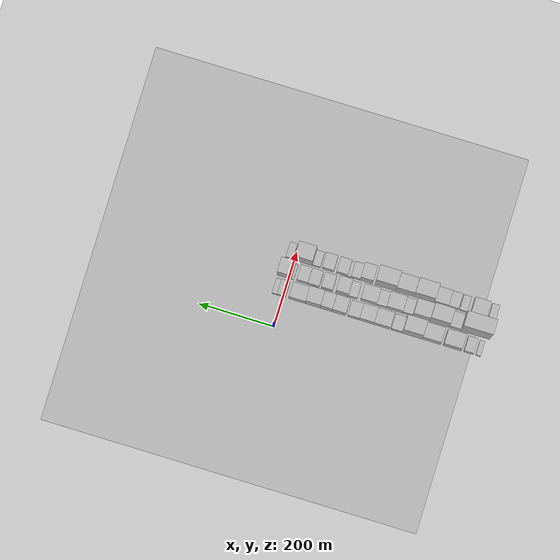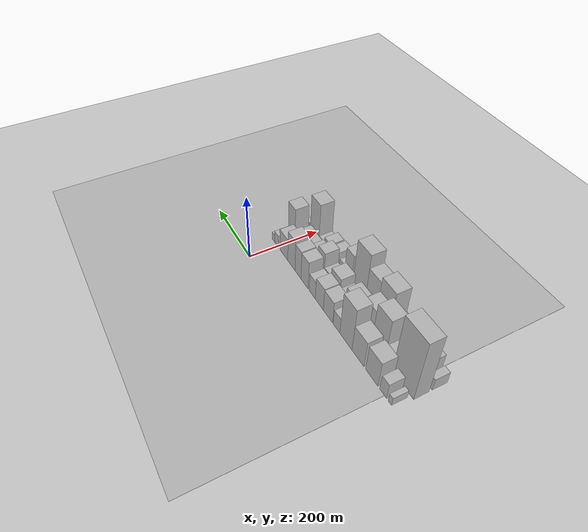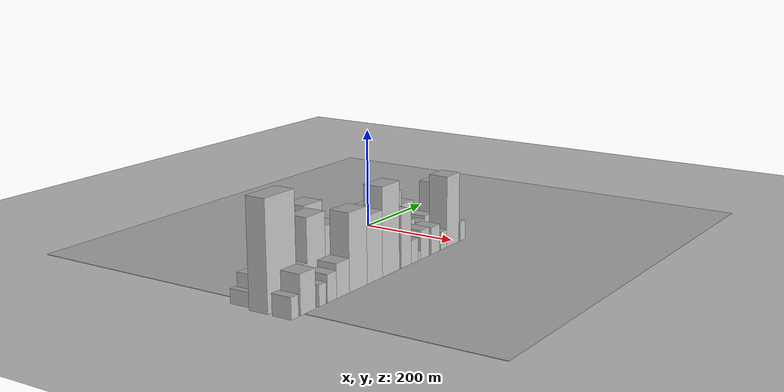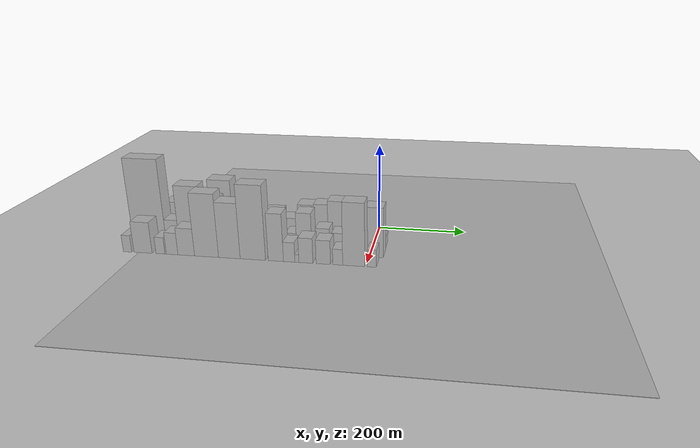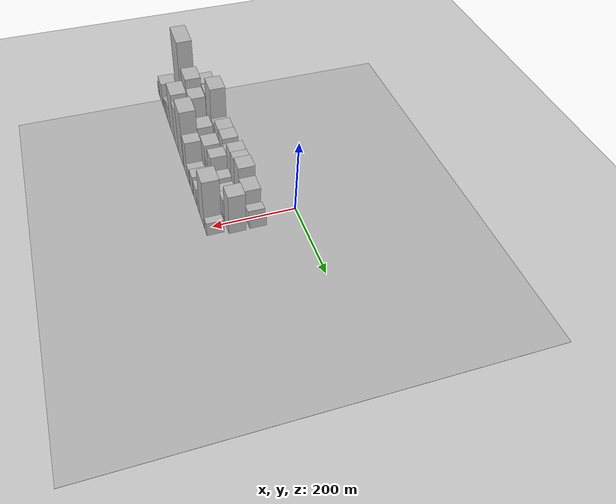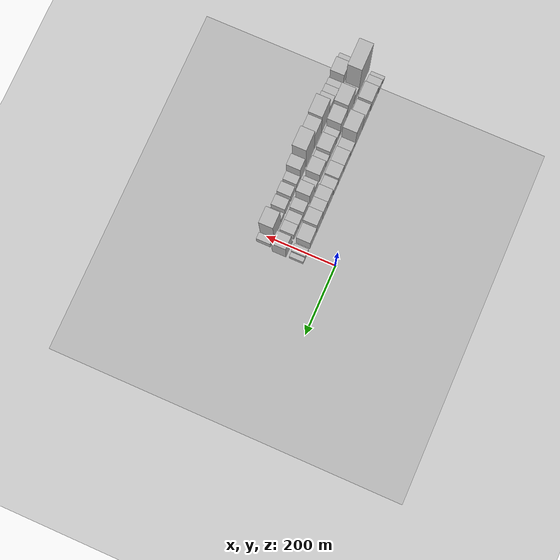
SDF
<sdf version="1.6">
 <world name="default">
  <include><name>ground_plane_1</name><uri>model://HANNAS_ground_plane</uri></include>
  <include>
   <name>ground_plane_2</name>
   <uri>model://HANNAS_ground_plane</uri>
   <pose>100 0 0  0 0 0</pose>
  </include>
  <model name="building_1">
   <static>1</static>
   <pose>100.0000 -519.6866 0 0.000000 0.000000 0.000000</pose>
   <link name="link">
    <pose>0 0 13.50 0 0 0</pose>
    <collision name="collision"><geometry><box><size>40.0000 12.6267 27.0000</size></box></geometry></collision>
    <visual name="visual">
     <cast_shadows>0</cast_shadows>
     <geometry><box><size>40.0000 12.6267 27.0000</size></box></geometry>
     <material>
      <script>
       <uri>model://HANNAS_wall/materials/scripts</uri>
       <uri>model://HANNAS_wall/materials/textures</uri>
       <name>vrc/HANNAS_wall</name>
      </script>
     </material>
    </visual>
   </link>
  </model>
  <model name="building_2">
   <static>1</static>
   <pose>100.0000 -494.6154 0 0.000000 0.000000 0.000000</pose>
   <link name="link">
    <pose>0 0 25.50 0 0 0</pose>
    <collision name="collision"><geometry><box><size>40.0000 25.5158 51.0000</size></box></geometry></collision>
    <visual name="visual">
     <cast_shadows>0</cast_shadows>
     <geometry><box><size>40.0000 25.5158 51.0000</size></box></geometry>
     <material>
      <script>
       <uri>model://HANNAS_wall/materials/scripts</uri>
       <uri>model://HANNAS_wall/materials/textures</uri>
       <name>vrc/HANNAS_wall</name>
      </script>
     </material>
    </visual>
   </link>
  </model>
  <model name="building_3">
   <static>1</static>
   <pose>100.0000 -450.8722 0 0.000000 0.000000 0.000000</pose>
   <link name="link">
    <pose>0 0 42.00 0 0 0</pose>
    <collision name="collision"><geometry><box><size>40.0000 47.9705 84.0000</size></box></geometry></collision>
    <visual name="visual">
     <cast_shadows>0</cast_shadows>
     <geometry><box><size>40.0000 47.9705 84.0000</size></box></geometry>
     <material>
      <script>
       <uri>model://HANNAS_wall/materials/scripts</uri>
       <uri>model://HANNAS_wall/materials/textures</uri>
       <name>vrc/HANNAS_wall</name>
      </script>
     </material>
    </visual>
   </link>
  </model>
  <model name="building_4">
   <static>1</static>
   <pose>100.0000 -395.0757 0 0.000000 0.000000 0.000000</pose>
   <link name="link">
    <pose>0 0 43.50 0 0 0</pose>
    <collision name="collision"><geometry><box><size>40.0000 49.6225 87.0000</size></box></geometry></collision>
    <visual name="visual">
     <cast_shadows>0</cast_shadows>
     <geometry><box><size>40.0000 49.6225 87.0000</size></box></geometry>
     <material>
      <script>
       <uri>model://HANNAS_wall/materials/scripts</uri>
       <uri>model://HANNAS_wall/materials/textures</uri>
       <name>vrc/HANNAS_wall</name>
      </script>
     </material>
    </visual>
   </link>
  </model>
  <model name="building_5">
   <static>1</static>
   <pose>100.0000 -343.9417 0 0.000000 0.000000 0.000000</pose>
   <link name="link">
    <pose>0 0 70.50 0 0 0</pose>
    <collision name="collision"><geometry><box><size>40.0000 52.6456 141.0000</size></box></geometry></collision>
    <visual name="visual">
     <cast_shadows>0</cast_shadows>
     <geometry><box><size>40.0000 52.6456 141.0000</size></box></geometry>
     <material>
      <script>
       <uri>model://HANNAS_wall/materials/scripts</uri>
       <uri>model://HANNAS_wall/materials/textures</uri>
       <name>vrc/HANNAS_wall</name>
      </script>
     </material>
    </visual>
   </link>
  </model>
  <model name="building_6">
   <static>1</static>
   <pose>100.0000 -302.6311 0 0.000000 0.000000 0.000000</pose>
   <link name="link">
    <pose>0 0 25.50 0 0 0</pose>
    <collision name="collision"><geometry><box><size>40.0000 29.9756 51.0000</size></box></geometry></collision>
    <visual name="visual">
     <cast_shadows>0</cast_shadows>
     <geometry><box><size>40.0000 29.9756 51.0000</size></box></geometry>
     <material>
      <script>
       <uri>model://HANNAS_wall/materials/scripts</uri>
       <uri>model://HANNAS_wall/materials/textures</uri>
       <name>vrc/HANNAS_wall</name>
      </script>
     </material>
    </visual>
   </link>
  </model>
  <model name="building_7">
   <static>1</static>
   <pose>100.0000 -263.2616 0 0.000000 0.000000 0.000000</pose>
   <link name="link">
    <pose>0 0 36.00 0 0 0</pose>
    <collision name="collision"><geometry><box><size>40.0000 42.7635 72.0000</size></box></geometry></collision>
    <visual name="visual">
     <cast_shadows>0</cast_shadows>
     <geometry><box><size>40.0000 42.7635 72.0000</size></box></geometry>
     <material>
      <script>
       <uri>model://HANNAS_wall/materials/scripts</uri>
       <uri>model://HANNAS_wall/materials/textures</uri>
       <name>vrc/HANNAS_wall</name>
      </script>
     </material>
    </visual>
   </link>
  </model>
  <model name="building_8">
   <static>1</static>
   <pose>100.0000 -222.4727 0 0.000000 0.000000 0.000000</pose>
   <link name="link">
    <pose>0 0 37.50 0 0 0</pose>
    <collision name="collision"><geometry><box><size>40.0000 38.8142 75.0000</size></box></geometry></collision>
    <visual name="visual">
     <cast_shadows>0</cast_shadows>
     <geometry><box><size>40.0000 38.8142 75.0000</size></box></geometry>
     <material>
      <script>
       <uri>model://HANNAS_wall/materials/scripts</uri>
       <uri>model://HANNAS_wall/materials/textures</uri>
       <name>vrc/HANNAS_wall</name>
      </script>
     </material>
    </visual>
   </link>
  </model>
  <model name="building_9">
   <static>1</static>
   <pose>100.0000 -187.4194 0 0.000000 0.000000 0.000000</pose>
   <link name="link">
    <pose>0 0 30.00 0 0 0</pose>
    <collision name="collision"><geometry><box><size>40.0000 31.2924 60.0000</size></box></geometry></collision>
    <visual name="visual">
     <cast_shadows>0</cast_shadows>
     <geometry><box><size>40.0000 31.2924 60.0000</size></box></geometry>
     <material>
      <script>
       <uri>model://HANNAS_wall/materials/scripts</uri>
       <uri>model://HANNAS_wall/materials/textures</uri>
       <name>vrc/HANNAS_wall</name>
      </script>
     </material>
    </visual>
   </link>
  </model>
  <model name="building_10">
   <static>1</static>
   <pose>100.0000 -148.5886 0 0.000000 0.000000 0.000000</pose>
   <link name="link">
    <pose>0 0 46.50 0 0 0</pose>
    <collision name="collision"><geometry><box><size>40.0000 36.3691 93.0000</size></box></geometry></collision>
    <visual name="visual">
     <cast_shadows>0</cast_shadows>
     <geometry><box><size>40.0000 36.3691 93.0000</size></box></geometry>
     <material>
      <script>
       <uri>model://HANNAS_wall/materials/scripts</uri>
       <uri>model://HANNAS_wall/materials/textures</uri>
       <name>vrc/HANNAS_wall</name>
      </script>
     </material>
    </visual>
   </link>
  </model>
  <model name="building_11">
   <static>1</static>
   <pose>100.0000 -114.7853 0 0.000000 0.000000 0.000000</pose>
   <link name="link">
    <pose>0 0 48.00 0 0 0</pose>
    <collision name="collision"><geometry><box><size>40.0000 31.2376 96.0000</size></box></geometry></collision>
    <visual name="visual">
     <cast_shadows>0</cast_shadows>
     <geometry><box><size>40.0000 31.2376 96.0000</size></box></geometry>
     <material>
      <script>
       <uri>model://HANNAS_wall/materials/scripts</uri>
       <uri>model://HANNAS_wall/materials/textures</uri>
       <name>vrc/HANNAS_wall</name>
      </script>
     </material>
    </visual>
   </link>
  </model>
  <model name="building_12">
   <static>1</static>
   <pose>100.0000 -79.3528 0 0.000000 0.000000 0.000000</pose>
   <link name="link">
    <pose>0 0 52.50 0 0 0</pose>
    <collision name="collision"><geometry><box><size>40.0000 39.6273 105.0000</size></box></geometry></collision>
    <visual name="visual">
     <cast_shadows>0</cast_shadows>
     <geometry><box><size>40.0000 39.6273 105.0000</size></box></geometry>
     <material>
      <script>
       <uri>model://HANNAS_wall/materials/scripts</uri>
       <uri>model://HANNAS_wall/materials/textures</uri>
       <name>vrc/HANNAS_wall</name>
      </script>
     </material>
    </visual>
   </link>
  </model>
  <model name="building_13">
   <static>1</static>
   <pose>100.0000 -37.3916 0 0.000000 0.000000 0.000000</pose>
   <link name="link">
    <pose>0 0 37.50 0 0 0</pose>
    <collision name="collision"><geometry><box><size>40.0000 44.2951 75.0000</size></box></geometry></collision>
    <visual name="visual">
     <cast_shadows>0</cast_shadows>
     <geometry><box><size>40.0000 44.2951 75.0000</size></box></geometry>
     <material>
      <script>
       <uri>model://HANNAS_wall/materials/scripts</uri>
       <uri>model://HANNAS_wall/materials/textures</uri>
       <name>vrc/HANNAS_wall</name>
      </script>
     </material>
    </visual>
   </link>
  </model>
  <model name="building_14">
   <static>1</static>
   <pose>100.0000 5.1237 0 0.000000 0.000000 0.000000</pose>
   <link name="link">
    <pose>0 0 21.00 0 0 0</pose>
    <collision name="collision"><geometry><box><size>40.0000 22.7354 42.0000</size></box></geometry></collision>
    <visual name="visual">
     <cast_shadows>0</cast_shadows>
     <geometry><box><size>40.0000 22.7354 42.0000</size></box></geometry>
     <material>
      <script>
       <uri>model://HANNAS_wall/materials/scripts</uri>
       <uri>model://HANNAS_wall/materials/textures</uri>
       <name>vrc/HANNAS_wall</name>
      </script>
     </material>
    </visual>
   </link>
  </model>
  <model name="building_15">
   <static>1</static>
   <pose>100.0000 23.2030 0 0.000000 0.000000 0.000000</pose>
   <link name="link">
    <pose>0 0 13.50 0 0 0</pose>
    <collision name="collision"><geometry><box><size>40.0000 13.4233 27.0000</size></box></geometry></collision>
    <visual name="visual">
     <cast_shadows>0</cast_shadows>
     <geometry><box><size>40.0000 13.4233 27.0000</size></box></geometry>
     <material>
      <script>
       <uri>model://HANNAS_wall/materials/scripts</uri>
       <uri>model://HANNAS_wall/materials/textures</uri>
       <name>vrc/HANNAS_wall</name>
      </script>
     </material>
    </visual>
   </link>
  </model>
  <model name="building_31">
   <static>1</static>
   <pose>149.0000 -497.0887 0 0.000000 0.000000 0.000000</pose>
   <link name="link">
    <pose>0 0 99.00 0 0 0</pose>
    <collision name="collision"><geometry><box><size>40.0000 77.8226 198.0000</size></box></geometry></collision>
    <visual name="visual">
     <cast_shadows>0</cast_shadows>
     <geometry><box><size>40.0000 77.8226 198.0000</size></box></geometry>
     <material>
      <script>
       <uri>model://HANNAS_wall/materials/scripts</uri>
       <uri>model://HANNAS_wall/materials/textures</uri>
       <name>vrc/HANNAS_wall</name>
      </script>
     </material>
    </visual>
   </link>
  </model>
  <model name="building_32">
   <static>1</static>
   <pose>149.0000 -442.9070 0 0.000000 0.000000 0.000000</pose>
   <link name="link">
    <pose>0 0 30.00 0 0 0</pose>
    <collision name="collision"><geometry><box><size>40.0000 30.5407 60.0000</size></box></geometry></collision>
    <visual name="visual">
     <cast_shadows>0</cast_shadows>
     <geometry><box><size>40.0000 30.5407 60.0000</size></box></geometry>
     <material>
      <script>
       <uri>model://HANNAS_wall/materials/scripts</uri>
       <uri>model://HANNAS_wall/materials/textures</uri>
       <name>vrc/HANNAS_wall</name>
      </script>
     </material>
    </visual>
   </link>
  </model>
  <model name="building_33">
   <static>1</static>
   <pose>149.0000 -401.4704 0 0.000000 0.000000 0.000000</pose>
   <link name="link">
    <pose>0 0 70.50 0 0 0</pose>
    <collision name="collision"><geometry><box><size>40.0000 52.3324 141.0000</size></box></geometry></collision>
    <visual name="visual">
     <cast_shadows>0</cast_shadows>
     <geometry><box><size>40.0000 52.3324 141.0000</size></box></geometry>
     <material>
      <script>
       <uri>model://HANNAS_wall/materials/scripts</uri>
       <uri>model://HANNAS_wall/materials/textures</uri>
       <name>vrc/HANNAS_wall</name>
      </script>
     </material>
    </visual>
   </link>
  </model>
  <model name="building_34">
   <static>1</static>
   <pose>149.0000 -352.8237 0 0.000000 0.000000 0.000000</pose>
   <link name="link">
    <pose>0 0 57.00 0 0 0</pose>
    <collision name="collision"><geometry><box><size>40.0000 44.9612 114.0000</size></box></geometry></collision>
    <visual name="visual">
     <cast_shadows>0</cast_shadows>
     <geometry><box><size>40.0000 44.9612 114.0000</size></box></geometry>
     <material>
      <script>
       <uri>model://HANNAS_wall/materials/scripts</uri>
       <uri>model://HANNAS_wall/materials/textures</uri>
       <name>vrc/HANNAS_wall</name>
      </script>
     </material>
    </visual>
   </link>
  </model>
  <model name="building_35">
   <static>1</static>
   <pose>149.0000 -317.1891 0 0.000000 0.000000 0.000000</pose>
   <link name="link">
    <pose>0 0 25.50 0 0 0</pose>
    <collision name="collision"><geometry><box><size>40.0000 26.3079 51.0000</size></box></geometry></collision>
    <visual name="visual">
     <cast_shadows>0</cast_shadows>
     <geometry><box><size>40.0000 26.3079 51.0000</size></box></geometry>
     <material>
      <script>
       <uri>model://HANNAS_wall/materials/scripts</uri>
       <uri>model://HANNAS_wall/materials/textures</uri>
       <name>vrc/HANNAS_wall</name>
      </script>
     </material>
    </visual>
   </link>
  </model>
  <model name="building_36">
   <static>1</static>
   <pose>149.0000 -282.0252 0 0.000000 0.000000 0.000000</pose>
   <link name="link">
    <pose>0 0 37.50 0 0 0</pose>
    <collision name="collision"><geometry><box><size>40.0000 44.0200 75.0000</size></box></geometry></collision>
    <visual name="visual">
     <cast_shadows>0</cast_shadows>
     <geometry><box><size>40.0000 44.0200 75.0000</size></box></geometry>
     <material>
      <script>
       <uri>model://HANNAS_wall/materials/scripts</uri>
       <uri>model://HANNAS_wall/materials/textures</uri>
       <name>vrc/HANNAS_wall</name>
      </script>
     </material>
    </visual>
   </link>
  </model>
  <model name="building_37">
   <static>1</static>
   <pose>149.0000 -246.9999 0 0.000000 0.000000 0.000000</pose>
   <link name="link">
    <pose>0 0 22.50 0 0 0</pose>
    <collision name="collision"><geometry><box><size>40.0000 26.0306 45.0000</size></box></geometry></collision>
    <visual name="visual">
     <cast_shadows>0</cast_shadows>
     <geometry><box><size>40.0000 26.0306 45.0000</size></box></geometry>
     <material>
      <script>
       <uri>model://HANNAS_wall/materials/scripts</uri>
       <uri>model://HANNAS_wall/materials/textures</uri>
       <name>vrc/HANNAS_wall</name>
      </script>
     </material>
    </visual>
   </link>
  </model>
  <model name="building_38">
   <static>1</static>
   <pose>149.0000 -212.6889 0 0.000000 0.000000 0.000000</pose>
   <link name="link">
    <pose>0 0 37.50 0 0 0</pose>
    <collision name="collision"><geometry><box><size>40.0000 42.5914 75.0000</size></box></geometry></collision>
    <visual name="visual">
     <cast_shadows>0</cast_shadows>
     <geometry><box><size>40.0000 42.5914 75.0000</size></box></geometry>
     <material>
      <script>
       <uri>model://HANNAS_wall/materials/scripts</uri>
       <uri>model://HANNAS_wall/materials/textures</uri>
       <name>vrc/HANNAS_wall</name>
      </script>
     </material>
    </visual>
   </link>
  </model>
  <model name="building_39">
   <static>1</static>
   <pose>149.0000 -170.6452 0 0.000000 0.000000 0.000000</pose>
   <link name="link">
    <pose>0 0 22.50 0 0 0</pose>
    <collision name="collision"><geometry><box><size>40.0000 23.4961 45.0000</size></box></geometry></collision>
    <visual name="visual">
     <cast_shadows>0</cast_shadows>
     <geometry><box><size>40.0000 23.4961 45.0000</size></box></geometry>
     <material>
      <script>
       <uri>model://HANNAS_wall/materials/scripts</uri>
       <uri>model://HANNAS_wall/materials/textures</uri>
       <name>vrc/HANNAS_wall</name>
      </script>
     </material>
    </visual>
   </link>
  </model>
  <model name="building_40">
   <static>1</static>
   <pose>149.0000 -142.1918 0 0.000000 0.000000 0.000000</pose>
   <link name="link">
    <pose>0 0 46.50 0 0 0</pose>
    <collision name="collision"><geometry><box><size>40.0000 33.4107 93.0000</size></box></geometry></collision>
    <visual name="visual">
     <cast_shadows>0</cast_shadows>
     <geometry><box><size>40.0000 33.4107 93.0000</size></box></geometry>
     <material>
      <script>
       <uri>model://HANNAS_wall/materials/scripts</uri>
       <uri>model://HANNAS_wall/materials/textures</uri>
       <name>vrc/HANNAS_wall</name>
      </script>
     </material>
    </visual>
   </link>
  </model>
  <model name="building_41">
   <static>1</static>
   <pose>149.0000 -101.2283 0 0.000000 0.000000 0.000000</pose>
   <link name="link">
    <pose>0 0 30.00 0 0 0</pose>
    <collision name="collision"><geometry><box><size>40.0000 30.5162 60.0000</size></box></geometry></collision>
    <visual name="visual">
     <cast_shadows>0</cast_shadows>
     <geometry><box><size>40.0000 30.5162 60.0000</size></box></geometry>
     <material>
      <script>
       <uri>model://HANNAS_wall/materials/scripts</uri>
       <uri>model://HANNAS_wall/materials/textures</uri>
       <name>vrc/HANNAS_wall</name>
      </script>
     </material>
    </visual>
   </link>
  </model>
  <model name="building_42">
   <static>1</static>
   <pose>149.0000 -65.9850 0 0.000000 0.000000 0.000000</pose>
   <link name="link">
    <pose>0 0 25.50 0 0 0</pose>
    <collision name="collision"><geometry><box><size>40.0000 29.9704 51.0000</size></box></geometry></collision>
    <visual name="visual">
     <cast_shadows>0</cast_shadows>
     <geometry><box><size>40.0000 29.9704 51.0000</size></box></geometry>
     <material>
      <script>
       <uri>model://HANNAS_wall/materials/scripts</uri>
       <uri>model://HANNAS_wall/materials/textures</uri>
       <name>vrc/HANNAS_wall</name>
      </script>
     </material>
    </visual>
   </link>
  </model>
  <model name="building_43">
   <static>1</static>
   <pose>149.0000 -36.1388 0 0.000000 0.000000 0.000000</pose>
   <link name="link">
    <pose>0 0 28.50 0 0 0</pose>
    <collision name="collision"><geometry><box><size>40.0000 29.7221 57.0000</size></box></geometry></collision>
    <visual name="visual">
     <cast_shadows>0</cast_shadows>
     <geometry><box><size>40.0000 29.7221 57.0000</size></box></geometry>
     <material>
      <script>
       <uri>model://HANNAS_wall/materials/scripts</uri>
       <uri>model://HANNAS_wall/materials/textures</uri>
       <name>vrc/HANNAS_wall</name>
      </script>
     </material>
    </visual>
   </link>
  </model>
  <model name="building_44">
   <static>1</static>
   <pose>149.0000 -10.1473 0 0.000000 0.000000 0.000000</pose>
   <link name="link">
    <pose>0 0 7.50 0 0 0</pose>
    <collision name="collision"><geometry><box><size>40.0000 6.2609 15.0000</size></box></geometry></collision>
    <visual name="visual">
     <cast_shadows>0</cast_shadows>
     <geometry><box><size>40.0000 6.2609 15.0000</size></box></geometry>
     <material>
      <script>
       <uri>model://HANNAS_wall/materials/scripts</uri>
       <uri>model://HANNAS_wall/materials/textures</uri>
       <name>vrc/HANNAS_wall</name>
      </script>
     </material>
    </visual>
   </link>
  </model>
  <model name="building_45">
   <static>1</static>
   <pose>149.0000 12.0057 0 0.000000 0.000000 0.000000</pose>
   <link name="link">
    <pose>0 0 57.00 0 0 0</pose>
    <collision name="collision"><geometry><box><size>40.0000 38.0451 114.0000</size></box></geometry></collision>
    <visual name="visual">
     <cast_shadows>0</cast_shadows>
     <geometry><box><size>40.0000 38.0451 114.0000</size></box></geometry>
     <material>
      <script>
       <uri>model://HANNAS_wall/materials/scripts</uri>
       <uri>model://HANNAS_wall/materials/textures</uri>
       <name>vrc/HANNAS_wall</name>
      </script>
     </material>
    </visual>
   </link>
  </model>
  <model name="building_61">
   <static>1</static>
   <pose>198.0000 -526.1822 0 0.000000 0.000000 0.000000</pose>
   <link name="link">
    <pose>0 0 19.50 0 0 0</pose>
    <collision name="collision"><geometry><box><size>40.0000 19.6356 39.0000</size></box></geometry></collision>
    <visual name="visual">
     <cast_shadows>0</cast_shadows>
     <geometry><box><size>40.0000 19.6356 39.0000</size></box></geometry>
     <material>
      <script>
       <uri>model://HANNAS_wall/materials/scripts</uri>
       <uri>model://HANNAS_wall/materials/textures</uri>
       <name>vrc/HANNAS_wall</name>
      </script>
     </material>
    </visual>
   </link>
  </model>
  <model name="building_62">
   <static>1</static>
   <pose>198.0000 -490.4910 0 0.000000 0.000000 0.000000</pose>
   <link name="link">
    <pose>0 0 36.00 0 0 0</pose>
    <collision name="collision"><geometry><box><size>40.0000 41.7467 72.0000</size></box></geometry></collision>
    <visual name="visual">
     <cast_shadows>0</cast_shadows>
     <geometry><box><size>40.0000 41.7467 72.0000</size></box></geometry>
     <material>
      <script>
       <uri>model://HANNAS_wall/materials/scripts</uri>
       <uri>model://HANNAS_wall/materials/textures</uri>
       <name>vrc/HANNAS_wall</name>
      </script>
     </material>
    </visual>
   </link>
  </model>
  <model name="building_63">
   <static>1</static>
   <pose>198.0000 -450.3606 0 0.000000 0.000000 0.000000</pose>
   <link name="link">
    <pose>0 0 19.50 0 0 0</pose>
    <collision name="collision"><geometry><box><size>40.0000 20.5141 39.0000</size></box></geometry></collision>
    <visual name="visual">
     <cast_shadows>0</cast_shadows>
     <geometry><box><size>40.0000 20.5141 39.0000</size></box></geometry>
     <material>
      <script>
       <uri>model://HANNAS_wall/materials/scripts</uri>
       <uri>model://HANNAS_wall/materials/textures</uri>
       <name>vrc/HANNAS_wall</name>
      </script>
     </material>
    </visual>
   </link>
  </model>
  <model name="building_64">
   <static>1</static>
   <pose>198.0000 -423.8604 0 0.000000 0.000000 0.000000</pose>
   <link name="link">
    <pose>0 0 25.50 0 0 0</pose>
    <collision name="collision"><geometry><box><size>40.0000 26.4863 51.0000</size></box></geometry></collision>
    <visual name="visual">
     <cast_shadows>0</cast_shadows>
     <geometry><box><size>40.0000 26.4863 51.0000</size></box></geometry>
     <material>
      <script>
       <uri>model://HANNAS_wall/materials/scripts</uri>
       <uri>model://HANNAS_wall/materials/textures</uri>
       <name>vrc/HANNAS_wall</name>
      </script>
     </material>
    </visual>
   </link>
  </model>
  <model name="building_65">
   <static>1</static>
   <pose>198.0000 -391.8315 0 0.000000 0.000000 0.000000</pose>
   <link name="link">
    <pose>0 0 31.50 0 0 0</pose>
    <collision name="collision"><geometry><box><size>40.0000 37.5714 63.0000</size></box></geometry></collision>
    <visual name="visual">
     <cast_shadows>0</cast_shadows>
     <geometry><box><size>40.0000 37.5714 63.0000</size></box></geometry>
     <material>
      <script>
       <uri>model://HANNAS_wall/materials/scripts</uri>
       <uri>model://HANNAS_wall/materials/textures</uri>
       <name>vrc/HANNAS_wall</name>
      </script>
     </material>
    </visual>
   </link>
  </model>
  <model name="building_66">
   <static>1</static>
   <pose>198.0000 -346.0306 0 0.000000 0.000000 0.000000</pose>
   <link name="link">
    <pose>0 0 72.00 0 0 0</pose>
    <collision name="collision"><geometry><box><size>40.0000 54.0305 144.0000</size></box></geometry></collision>
    <visual name="visual">
     <cast_shadows>0</cast_shadows>
     <geometry><box><size>40.0000 54.0305 144.0000</size></box></geometry>
     <material>
      <script>
       <uri>model://HANNAS_wall/materials/scripts</uri>
       <uri>model://HANNAS_wall/materials/textures</uri>
       <name>vrc/HANNAS_wall</name>
      </script>
     </material>
    </visual>
   </link>
  </model>
  <model name="building_67">
   <static>1</static>
   <pose>198.0000 -294.9194 0 0.000000 0.000000 0.000000</pose>
   <link name="link">
    <pose>0 0 63.00 0 0 0</pose>
    <collision name="collision"><geometry><box><size>40.0000 48.1919 126.0000</size></box></geometry></collision>
    <visual name="visual">
     <cast_shadows>0</cast_shadows>
     <geometry><box><size>40.0000 48.1919 126.0000</size></box></geometry>
     <material>
      <script>
       <uri>model://HANNAS_wall/materials/scripts</uri>
       <uri>model://HANNAS_wall/materials/textures</uri>
       <name>vrc/HANNAS_wall</name>
      </script>
     </material>
    </visual>
   </link>
  </model>
  <model name="building_68">
   <static>1</static>
   <pose>198.0000 -242.9225 0 0.000000 0.000000 0.000000</pose>
   <link name="link">
    <pose>0 0 84.00 0 0 0</pose>
    <collision name="collision"><geometry><box><size>40.0000 55.8019 168.0000</size></box></geometry></collision>
    <visual name="visual">
     <cast_shadows>0</cast_shadows>
     <geometry><box><size>40.0000 55.8019 168.0000</size></box></geometry>
     <material>
      <script>
       <uri>model://HANNAS_wall/materials/scripts</uri>
       <uri>model://HANNAS_wall/materials/textures</uri>
       <name>vrc/HANNAS_wall</name>
      </script>
     </material>
    </visual>
   </link>
  </model>
  <model name="building_69">
   <static>1</static>
   <pose>198.0000 -192.3713 0 0.000000 0.000000 0.000000</pose>
   <link name="link">
    <pose>0 0 54.00 0 0 0</pose>
    <collision name="collision"><geometry><box><size>40.0000 33.3005 108.0000</size></box></geometry></collision>
    <visual name="visual">
     <cast_shadows>0</cast_shadows>
     <geometry><box><size>40.0000 33.3005 108.0000</size></box></geometry>
     <material>
      <script>
       <uri>model://HANNAS_wall/materials/scripts</uri>
       <uri>model://HANNAS_wall/materials/textures</uri>
       <name>vrc/HANNAS_wall</name>
      </script>
     </material>
    </visual>
   </link>
  </model>
  <model name="building_70">
   <static>1</static>
   <pose>198.0000 -163.3544 0 0.000000 0.000000 0.000000</pose>
   <link name="link">
    <pose>0 0 22.50 0 0 0</pose>
    <collision name="collision"><geometry><box><size>40.0000 24.7333 45.0000</size></box></geometry></collision>
    <visual name="visual">
     <cast_shadows>0</cast_shadows>
     <geometry><box><size>40.0000 24.7333 45.0000</size></box></geometry>
     <material>
      <script>
       <uri>model://HANNAS_wall/materials/scripts</uri>
       <uri>model://HANNAS_wall/materials/textures</uri>
       <name>vrc/HANNAS_wall</name>
      </script>
     </material>
    </visual>
   </link>
  </model>
  <model name="building_71">
   <static>1</static>
   <pose>198.0000 -146.6509 0 0.000000 0.000000 0.000000</pose>
   <link name="link">
    <pose>0 0 9.00 0 0 0</pose>
    <collision name="collision"><geometry><box><size>40.0000 8.6737 18.0000</size></box></geometry></collision>
    <visual name="visual">
     <cast_shadows>0</cast_shadows>
     <geometry><box><size>40.0000 8.6737 18.0000</size></box></geometry>
     <material>
      <script>
       <uri>model://HANNAS_wall/materials/scripts</uri>
       <uri>model://HANNAS_wall/materials/textures</uri>
       <name>vrc/HANNAS_wall</name>
      </script>
     </material>
    </visual>
   </link>
  </model>
  <model name="building_72">
   <static>1</static>
   <pose>198.0000 -127.2018 0 0.000000 0.000000 0.000000</pose>
   <link name="link">
    <pose>0 0 28.50 0 0 0</pose>
    <collision name="collision"><geometry><box><size>40.0000 30.2246 57.0000</size></box></geometry></collision>
    <visual name="visual">
     <cast_shadows>0</cast_shadows>
     <geometry><box><size>40.0000 30.2246 57.0000</size></box></geometry>
     <material>
      <script>
       <uri>model://HANNAS_wall/materials/scripts</uri>
       <uri>model://HANNAS_wall/materials/textures</uri>
       <name>vrc/HANNAS_wall</name>
      </script>
     </material>
    </visual>
   </link>
  </model>
  <model name="building_73">
   <static>1</static>
   <pose>198.0000 -89.7630 0 0.000000 0.000000 0.000000</pose>
   <link name="link">
    <pose>0 0 27.00 0 0 0</pose>
    <collision name="collision"><geometry><box><size>40.0000 30.6530 54.0000</size></box></geometry></collision>
    <visual name="visual">
     <cast_shadows>0</cast_shadows>
     <geometry><box><size>40.0000 30.6530 54.0000</size></box></geometry>
     <material>
      <script>
       <uri>model://HANNAS_wall/materials/scripts</uri>
       <uri>model://HANNAS_wall/materials/textures</uri>
       <name>vrc/HANNAS_wall</name>
      </script>
     </material>
    </visual>
   </link>
  </model>
  <model name="building_74">
   <static>1</static>
   <pose>198.0000 -58.8186 0 0.000000 0.000000 0.000000</pose>
   <link name="link">
    <pose>0 0 18.00 0 0 0</pose>
    <collision name="collision"><geometry><box><size>40.0000 21.2358 36.0000</size></box></geometry></collision>
    <visual name="visual">
     <cast_shadows>0</cast_shadows>
     <geometry><box><size>40.0000 21.2358 36.0000</size></box></geometry>
     <material>
      <script>
       <uri>model://HANNAS_wall/materials/scripts</uri>
       <uri>model://HANNAS_wall/materials/textures</uri>
       <name>vrc/HANNAS_wall</name>
      </script>
     </material>
    </visual>
   </link>
  </model>
  <model name="building_75">
   <static>1</static>
   <pose>198.0000 -24.9115 0 0.000000 0.000000 0.000000</pose>
   <link name="link">
    <pose>0 0 70.50 0 0 0</pose>
    <collision name="collision"><geometry><box><size>40.0000 46.5785 141.0000</size></box></geometry></collision>
    <visual name="visual">
     <cast_shadows>0</cast_shadows>
     <geometry><box><size>40.0000 46.5785 141.0000</size></box></geometry>
     <material>
      <script>
       <uri>model://HANNAS_wall/materials/scripts</uri>
       <uri>model://HANNAS_wall/materials/textures</uri>
       <name>vrc/HANNAS_wall</name>
      </script>
     </material>
    </visual>
   </link>
  </model>
  <model name="building_76">
   <static>1</static>
   <pose>198.0000 13.1556 0 0.000000 0.000000 0.000000</pose>
   <link name="link">
    <pose>0 0 19.50 0 0 0</pose>
    <collision name="collision"><geometry><box><size>40.0000 19.5557 39.0000</size></box></geometry></collision>
    <visual name="visual">
     <cast_shadows>0</cast_shadows>
     <geometry><box><size>40.0000 19.5557 39.0000</size></box></geometry>
     <material>
      <script>
       <uri>model://HANNAS_wall/materials/scripts</uri>
       <uri>model://HANNAS_wall/materials/textures</uri>
       <name>vrc/HANNAS_wall</name>
      </script>
     </material>
    </visual>
   </link>
  </model>
 </world>
</sdf>
